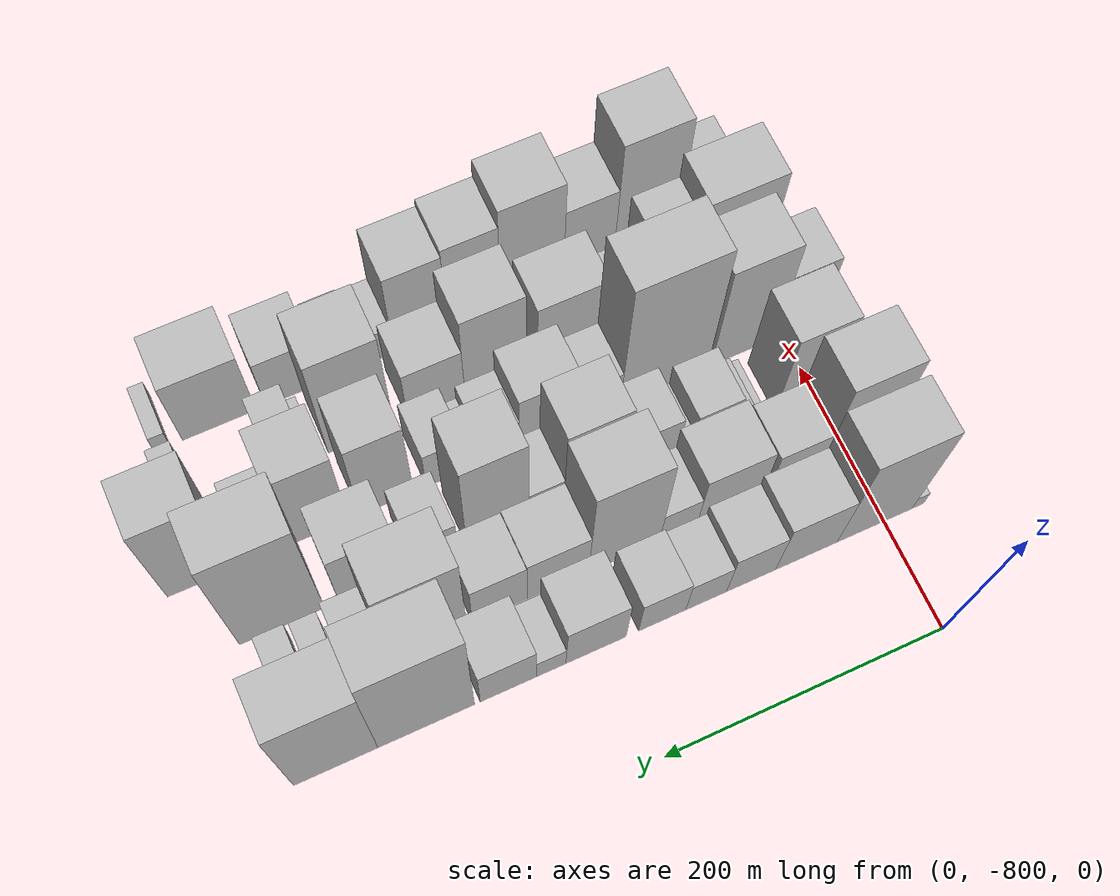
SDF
<sdf version="1.6">
 <world name="default">
  <model name="building_1">
   <static>1</static>
   <pose>100.0000 -825.5281 0 0.000000 0.000000 0.000000</pose>
   <link name="link">
    <pose>0 0 10.50 0 0 0</pose>
    <collision name="collision"><geometry><box><size>40.0000 8.9437 21.0000</size></box></geometry></collision>
    <visual name="visual">
     <cast_shadows>0</cast_shadows>
     <geometry><box><size>40.0000 8.9437 21.0000</size></box></geometry>
     <material>
      <script>
       <uri>model://HANNAS_wall/materials/scripts</uri>
       <uri>model://HANNAS_wall/materials/textures</uri>
       <name>vrc/HANNAS_wall</name>
      </script>
     </material>
    </visual>
   </link>
  </model>
  <model name="building_2">
   <static>1</static>
   <pose>100.0000 -792.9867 0 0.000000 0.000000 0.000000</pose>
   <link name="link">
    <pose>0 0 73.50 0 0 0</pose>
    <collision name="collision"><geometry><box><size>40.0000 56.1392 147.0000</size></box></geometry></collision>
    <visual name="visual">
     <cast_shadows>0</cast_shadows>
     <geometry><box><size>40.0000 56.1392 147.0000</size></box></geometry>
     <material>
      <script>
       <uri>model://HANNAS_wall/materials/scripts</uri>
       <uri>model://HANNAS_wall/materials/textures</uri>
       <name>vrc/HANNAS_wall</name>
      </script>
     </material>
    </visual>
   </link>
  </model>
  <model name="building_3">
   <static>1</static>
   <pose>100.0000 -742.1506 0 0.000000 0.000000 0.000000</pose>
   <link name="link">
    <pose>0 0 42.00 0 0 0</pose>
    <collision name="collision"><geometry><box><size>40.0000 45.5331 84.0000</size></box></geometry></collision>
    <visual name="visual">
     <cast_shadows>0</cast_shadows>
     <geometry><box><size>40.0000 45.5331 84.0000</size></box></geometry>
     <material>
      <script>
       <uri>model://HANNAS_wall/materials/scripts</uri>
       <uri>model://HANNAS_wall/materials/textures</uri>
       <name>vrc/HANNAS_wall</name>
      </script>
     </material>
    </visual>
   </link>
  </model>
  <model name="building_4">
   <static>1</static>
   <pose>100.0000 -701.3906 0 0.000000 0.000000 0.000000</pose>
   <link name="link">
    <pose>0 0 34.50 0 0 0</pose>
    <collision name="collision"><geometry><box><size>40.0000 35.9868 69.0000</size></box></geometry></collision>
    <visual name="visual">
     <cast_shadows>0</cast_shadows>
     <geometry><box><size>40.0000 35.9868 69.0000</size></box></geometry>
     <material>
      <script>
       <uri>model://HANNAS_wall/materials/scripts</uri>
       <uri>model://HANNAS_wall/materials/textures</uri>
       <name>vrc/HANNAS_wall</name>
      </script>
     </material>
    </visual>
   </link>
  </model>
  <model name="building_5">
   <static>1</static>
   <pose>100.0000 -668.6138 0 0.000000 0.000000 0.000000</pose>
   <link name="link">
    <pose>0 0 27.00 0 0 0</pose>
    <collision name="collision"><geometry><box><size>40.0000 29.5669 54.0000</size></box></geometry></collision>
    <visual name="visual">
     <cast_shadows>0</cast_shadows>
     <geometry><box><size>40.0000 29.5669 54.0000</size></box></geometry>
     <material>
      <script>
       <uri>model://HANNAS_wall/materials/scripts</uri>
       <uri>model://HANNAS_wall/materials/textures</uri>
       <name>vrc/HANNAS_wall</name>
      </script>
     </material>
    </visual>
   </link>
  </model>
  <model name="building_6">
   <static>1</static>
   <pose>100.0000 -636.8411 0 0.000000 0.000000 0.000000</pose>
   <link name="link">
    <pose>0 0 30.00 0 0 0</pose>
    <collision name="collision"><geometry><box><size>40.0000 33.9786 60.0000</size></box></geometry></collision>
    <visual name="visual">
     <cast_shadows>0</cast_shadows>
     <geometry><box><size>40.0000 33.9786 60.0000</size></box></geometry>
     <material>
      <script>
       <uri>model://HANNAS_wall/materials/scripts</uri>
       <uri>model://HANNAS_wall/materials/textures</uri>
       <name>vrc/HANNAS_wall</name>
      </script>
     </material>
    </visual>
   </link>
  </model>
  <model name="building_7">
   <static>1</static>
   <pose>100.0000 -589.4353 0 0.000000 0.000000 0.000000</pose>
   <link name="link">
    <pose>0 0 37.50 0 0 0</pose>
    <collision name="collision"><geometry><box><size>40.0000 42.8330 75.0000</size></box></geometry></collision>
    <visual name="visual">
     <cast_shadows>0</cast_shadows>
     <geometry><box><size>40.0000 42.8330 75.0000</size></box></geometry>
     <material>
      <script>
       <uri>model://HANNAS_wall/materials/scripts</uri>
       <uri>model://HANNAS_wall/materials/textures</uri>
       <name>vrc/HANNAS_wall</name>
      </script>
     </material>
    </visual>
   </link>
  </model>
  <model name="building_8">
   <static>1</static>
   <pose>100.0000 -557.5764 0 0.000000 0.000000 0.000000</pose>
   <link name="link">
    <pose>0 0 18.00 0 0 0</pose>
    <collision name="collision"><geometry><box><size>40.0000 20.8849 36.0000</size></box></geometry></collision>
    <visual name="visual">
     <cast_shadows>0</cast_shadows>
     <geometry><box><size>40.0000 20.8849 36.0000</size></box></geometry>
     <material>
      <script>
       <uri>model://HANNAS_wall/materials/scripts</uri>
       <uri>model://HANNAS_wall/materials/textures</uri>
       <name>vrc/HANNAS_wall</name>
      </script>
     </material>
    </visual>
   </link>
  </model>
  <model name="building_9">
   <static>1</static>
   <pose>100.0000 -527.5872 0 0.000000 0.000000 0.000000</pose>
   <link name="link">
    <pose>0 0 33.00 0 0 0</pose>
    <collision name="collision"><geometry><box><size>40.0000 39.0934 66.0000</size></box></geometry></collision>
    <visual name="visual">
     <cast_shadows>0</cast_shadows>
     <geometry><box><size>40.0000 39.0934 66.0000</size></box></geometry>
     <material>
      <script>
       <uri>model://HANNAS_wall/materials/scripts</uri>
       <uri>model://HANNAS_wall/materials/textures</uri>
       <name>vrc/HANNAS_wall</name>
      </script>
     </material>
    </visual>
   </link>
  </model>
  <model name="building_10">
   <static>1</static>
   <pose>100.0000 -470.7364 0 0.000000 0.000000 0.000000</pose>
   <link name="link">
    <pose>0 0 85.50 0 0 0</pose>
    <collision name="collision"><geometry><box><size>40.0000 66.6082 171.0000</size></box></geometry></collision>
    <visual name="visual">
     <cast_shadows>0</cast_shadows>
     <geometry><box><size>40.0000 66.6082 171.0000</size></box></geometry>
     <material>
      <script>
       <uri>model://HANNAS_wall/materials/scripts</uri>
       <uri>model://HANNAS_wall/materials/textures</uri>
       <name>vrc/HANNAS_wall</name>
      </script>
     </material>
    </visual>
   </link>
  </model>
  <model name="building_11">
   <static>1</static>
   <pose>100.0000 -408.8160 0 0.000000 0.000000 0.000000</pose>
   <link name="link">
    <pose>0 0 73.50 0 0 0</pose>
    <collision name="collision"><geometry><box><size>40.0000 57.2327 147.0000</size></box></geometry></collision>
    <visual name="visual">
     <cast_shadows>0</cast_shadows>
     <geometry><box><size>40.0000 57.2327 147.0000</size></box></geometry>
     <material>
      <script>
       <uri>model://HANNAS_wall/materials/scripts</uri>
       <uri>model://HANNAS_wall/materials/textures</uri>
       <name>vrc/HANNAS_wall</name>
      </script>
     </material>
    </visual>
   </link>
  </model>
  <model name="building_47">
   <static>1</static>
   <pose>149.0000 -801.1284 0 0.000000 0.000000 0.000000</pose>
   <link name="link">
    <pose>0 0 72.00 0 0 0</pose>
    <collision name="collision"><geometry><box><size>40.0000 49.7432 144.0000</size></box></geometry></collision>
    <visual name="visual">
     <cast_shadows>0</cast_shadows>
     <geometry><box><size>40.0000 49.7432 144.0000</size></box></geometry>
     <material>
      <script>
       <uri>model://HANNAS_wall/materials/scripts</uri>
       <uri>model://HANNAS_wall/materials/textures</uri>
       <name>vrc/HANNAS_wall</name>
      </script>
     </material>
    </visual>
   </link>
  </model>
  <model name="building_48">
   <static>1</static>
   <pose>149.0000 -757.5594 0 0.000000 0.000000 0.000000</pose>
   <link name="link">
    <pose>0 0 34.50 0 0 0</pose>
    <collision name="collision"><geometry><box><size>40.0000 37.3949 69.0000</size></box></geometry></collision>
    <visual name="visual">
     <cast_shadows>0</cast_shadows>
     <geometry><box><size>40.0000 37.3949 69.0000</size></box></geometry>
     <material>
      <script>
       <uri>model://HANNAS_wall/materials/scripts</uri>
       <uri>model://HANNAS_wall/materials/textures</uri>
       <name>vrc/HANNAS_wall</name>
      </script>
     </material>
    </visual>
   </link>
  </model>
  <model name="building_49">
   <static>1</static>
   <pose>149.0000 -710.0263 0 0.000000 0.000000 0.000000</pose>
   <link name="link">
    <pose>0 0 42.00 0 0 0</pose>
    <collision name="collision"><geometry><box><size>40.0000 47.6712 84.0000</size></box></geometry></collision>
    <visual name="visual">
     <cast_shadows>0</cast_shadows>
     <geometry><box><size>40.0000 47.6712 84.0000</size></box></geometry>
     <material>
      <script>
       <uri>model://HANNAS_wall/materials/scripts</uri>
       <uri>model://HANNAS_wall/materials/textures</uri>
       <name>vrc/HANNAS_wall</name>
      </script>
     </material>
    </visual>
   </link>
  </model>
  <model name="building_50">
   <static>1</static>
   <pose>149.0000 -672.4441 0 0.000000 0.000000 0.000000</pose>
   <link name="link">
    <pose>0 0 25.50 0 0 0</pose>
    <collision name="collision"><geometry><box><size>40.0000 27.4933 51.0000</size></box></geometry></collision>
    <visual name="visual">
     <cast_shadows>0</cast_shadows>
     <geometry><box><size>40.0000 27.4933 51.0000</size></box></geometry>
     <material>
      <script>
       <uri>model://HANNAS_wall/materials/scripts</uri>
       <uri>model://HANNAS_wall/materials/textures</uri>
       <name>vrc/HANNAS_wall</name>
      </script>
     </material>
    </visual>
   </link>
  </model>
  <model name="building_51">
   <static>1</static>
   <pose>149.0000 -632.8638 0 0.000000 0.000000 0.000000</pose>
   <link name="link">
    <pose>0 0 75.00 0 0 0</pose>
    <collision name="collision"><geometry><box><size>40.0000 51.6673 150.0000</size></box></geometry></collision>
    <visual name="visual">
     <cast_shadows>0</cast_shadows>
     <geometry><box><size>40.0000 51.6673 150.0000</size></box></geometry>
     <material>
      <script>
       <uri>model://HANNAS_wall/materials/scripts</uri>
       <uri>model://HANNAS_wall/materials/textures</uri>
       <name>vrc/HANNAS_wall</name>
      </script>
     </material>
    </visual>
   </link>
  </model>
  <model name="building_52">
   <static>1</static>
   <pose>149.0000 -584.9630 0 0.000000 0.000000 0.000000</pose>
   <link name="link">
    <pose>0 0 37.50 0 0 0</pose>
    <collision name="collision"><geometry><box><size>40.0000 44.1342 75.0000</size></box></geometry></collision>
    <visual name="visual">
     <cast_shadows>0</cast_shadows>
     <geometry><box><size>40.0000 44.1342 75.0000</size></box></geometry>
     <material>
      <script>
       <uri>model://HANNAS_wall/materials/scripts</uri>
       <uri>model://HANNAS_wall/materials/textures</uri>
       <name>vrc/HANNAS_wall</name>
      </script>
     </material>
    </visual>
   </link>
  </model>
  <model name="building_53">
   <static>1</static>
   <pose>149.0000 -543.5457 0 0.000000 0.000000 0.000000</pose>
   <link name="link">
    <pose>0 0 36.00 0 0 0</pose>
    <collision name="collision"><geometry><box><size>40.0000 38.7005 72.0000</size></box></geometry></collision>
    <visual name="visual">
     <cast_shadows>0</cast_shadows>
     <geometry><box><size>40.0000 38.7005 72.0000</size></box></geometry>
     <material>
      <script>
       <uri>model://HANNAS_wall/materials/scripts</uri>
       <uri>model://HANNAS_wall/materials/textures</uri>
       <name>vrc/HANNAS_wall</name>
      </script>
     </material>
    </visual>
   </link>
  </model>
  <model name="building_54">
   <static>1</static>
   <pose>149.0000 -492.4049 0 0.000000 0.000000 0.000000</pose>
   <link name="link">
    <pose>0 0 70.50 0 0 0</pose>
    <collision name="collision"><geometry><box><size>40.0000 55.5810 141.0000</size></box></geometry></collision>
    <visual name="visual">
     <cast_shadows>0</cast_shadows>
     <geometry><box><size>40.0000 55.5810 141.0000</size></box></geometry>
     <material>
      <script>
       <uri>model://HANNAS_wall/materials/scripts</uri>
       <uri>model://HANNAS_wall/materials/textures</uri>
       <name>vrc/HANNAS_wall</name>
      </script>
     </material>
    </visual>
   </link>
  </model>
  <model name="building_55">
   <static>1</static>
   <pose>149.0000 -451.6759 0 0.000000 0.000000 0.000000</pose>
   <link name="link">
    <pose>0 0 24.00 0 0 0</pose>
    <collision name="collision"><geometry><box><size>40.0000 25.8770 48.0000</size></box></geometry></collision>
    <visual name="visual">
     <cast_shadows>0</cast_shadows>
     <geometry><box><size>40.0000 25.8770 48.0000</size></box></geometry>
     <material>
      <script>
       <uri>model://HANNAS_wall/materials/scripts</uri>
       <uri>model://HANNAS_wall/materials/textures</uri>
       <name>vrc/HANNAS_wall</name>
      </script>
     </material>
    </visual>
   </link>
  </model>
  <model name="building_56">
   <static>1</static>
   <pose>149.0000 -425.4327 0 0.000000 0.000000 0.000000</pose>
   <link name="link">
    <pose>0 0 16.50 0 0 0</pose>
    <collision name="collision"><geometry><box><size>40.0000 18.6094 33.0000</size></box></geometry></collision>
    <visual name="visual">
     <cast_shadows>0</cast_shadows>
     <geometry><box><size>40.0000 18.6094 33.0000</size></box></geometry>
     <material>
      <script>
       <uri>model://HANNAS_wall/materials/scripts</uri>
       <uri>model://HANNAS_wall/materials/textures</uri>
       <name>vrc/HANNAS_wall</name>
      </script>
     </material>
    </visual>
   </link>
  </model>
  <model name="building_57">
   <static>1</static>
   <pose>149.0000 -402.5604 0 0.000000 0.000000 0.000000</pose>
   <link name="link">
    <pose>0 0 18.00 0 0 0</pose>
    <collision name="collision"><geometry><box><size>40.0000 21.1352 36.0000</size></box></geometry></collision>
    <visual name="visual">
     <cast_shadows>0</cast_shadows>
     <geometry><box><size>40.0000 21.1352 36.0000</size></box></geometry>
     <material>
      <script>
       <uri>model://HANNAS_wall/materials/scripts</uri>
       <uri>model://HANNAS_wall/materials/textures</uri>
       <name>vrc/HANNAS_wall</name>
      </script>
     </material>
    </visual>
   </link>
  </model>
  <model name="building_96">
   <static>1</static>
   <pose>198.0000 -824.0716 0 0.000000 0.000000 0.000000</pose>
   <link name="link">
    <pose>0 0 13.50 0 0 0</pose>
    <collision name="collision"><geometry><box><size>40.0000 11.8567 27.0000</size></box></geometry></collision>
    <visual name="visual">
     <cast_shadows>0</cast_shadows>
     <geometry><box><size>40.0000 11.8567 27.0000</size></box></geometry>
     <material>
      <script>
       <uri>model://HANNAS_wall/materials/scripts</uri>
       <uri>model://HANNAS_wall/materials/textures</uri>
       <name>vrc/HANNAS_wall</name>
      </script>
     </material>
    </visual>
   </link>
  </model>
  <model name="building_97">
   <static>1</static>
   <pose>198.0000 -791.1762 0 0.000000 0.000000 0.000000</pose>
   <link name="link">
    <pose>0 0 60.00 0 0 0</pose>
    <collision name="collision"><geometry><box><size>40.0000 43.9342 120.0000</size></box></geometry></collision>
    <visual name="visual">
     <cast_shadows>0</cast_shadows>
     <geometry><box><size>40.0000 43.9342 120.0000</size></box></geometry>
     <material>
      <script>
       <uri>model://HANNAS_wall/materials/scripts</uri>
       <uri>model://HANNAS_wall/materials/textures</uri>
       <name>vrc/HANNAS_wall</name>
      </script>
     </material>
    </visual>
   </link>
  </model>
  <model name="building_98">
   <static>1</static>
   <pose>198.0000 -755.4946 0 0.000000 0.000000 0.000000</pose>
   <link name="link">
    <pose>0 0 9.00 0 0 0</pose>
    <collision name="collision"><geometry><box><size>40.0000 7.4290 18.0000</size></box></geometry></collision>
    <visual name="visual">
     <cast_shadows>0</cast_shadows>
     <geometry><box><size>40.0000 7.4290 18.0000</size></box></geometry>
     <material>
      <script>
       <uri>model://HANNAS_wall/materials/scripts</uri>
       <uri>model://HANNAS_wall/materials/textures</uri>
       <name>vrc/HANNAS_wall</name>
      </script>
     </material>
    </visual>
   </link>
  </model>
  <model name="building_99">
   <static>1</static>
   <pose>198.0000 -745.9419 0 0.000000 0.000000 0.000000</pose>
   <link name="link">
    <pose>0 0 13.50 0 0 0</pose>
    <collision name="collision"><geometry><box><size>40.0000 11.6764 27.0000</size></box></geometry></collision>
    <visual name="visual">
     <cast_shadows>0</cast_shadows>
     <geometry><box><size>40.0000 11.6764 27.0000</size></box></geometry>
     <material>
      <script>
       <uri>model://HANNAS_wall/materials/scripts</uri>
       <uri>model://HANNAS_wall/materials/textures</uri>
       <name>vrc/HANNAS_wall</name>
      </script>
     </material>
    </visual>
   </link>
  </model>
  <model name="building_100">
   <static>1</static>
   <pose>198.0000 -723.5810 0 0.000000 0.000000 0.000000</pose>
   <link name="link">
    <pose>0 0 28.50 0 0 0</pose>
    <collision name="collision"><geometry><box><size>40.0000 33.0454 57.0000</size></box></geometry></collision>
    <visual name="visual">
     <cast_shadows>0</cast_shadows>
     <geometry><box><size>40.0000 33.0454 57.0000</size></box></geometry>
     <material>
      <script>
       <uri>model://HANNAS_wall/materials/scripts</uri>
       <uri>model://HANNAS_wall/materials/textures</uri>
       <name>vrc/HANNAS_wall</name>
      </script>
     </material>
    </visual>
   </link>
  </model>
  <model name="building_101">
   <static>1</static>
   <pose>198.0000 -701.5438 0 0.000000 0.000000 0.000000</pose>
   <link name="link">
    <pose>0 0 13.50 0 0 0</pose>
    <collision name="collision"><geometry><box><size>40.0000 11.0291 27.0000</size></box></geometry></collision>
    <visual name="visual">
     <cast_shadows>0</cast_shadows>
     <geometry><box><size>40.0000 11.0291 27.0000</size></box></geometry>
     <material>
      <script>
       <uri>model://HANNAS_wall/materials/scripts</uri>
       <uri>model://HANNAS_wall/materials/textures</uri>
       <name>vrc/HANNAS_wall</name>
      </script>
     </material>
    </visual>
   </link>
  </model>
  <model name="building_102">
   <static>1</static>
   <pose>198.0000 -676.7778 0 0.000000 0.000000 0.000000</pose>
   <link name="link">
    <pose>0 0 33.00 0 0 0</pose>
    <collision name="collision"><geometry><box><size>40.0000 38.5028 66.0000</size></box></geometry></collision>
    <visual name="visual">
     <cast_shadows>0</cast_shadows>
     <geometry><box><size>40.0000 38.5028 66.0000</size></box></geometry>
     <material>
      <script>
       <uri>model://HANNAS_wall/materials/scripts</uri>
       <uri>model://HANNAS_wall/materials/textures</uri>
       <name>vrc/HANNAS_wall</name>
      </script>
     </material>
    </visual>
   </link>
  </model>
  <model name="building_103">
   <static>1</static>
   <pose>198.0000 -634.9142 0 0.000000 0.000000 0.000000</pose>
   <link name="link">
    <pose>0 0 63.00 0 0 0</pose>
    <collision name="collision"><geometry><box><size>40.0000 45.2245 126.0000</size></box></geometry></collision>
    <visual name="visual">
     <cast_shadows>0</cast_shadows>
     <geometry><box><size>40.0000 45.2245 126.0000</size></box></geometry>
     <material>
      <script>
       <uri>model://HANNAS_wall/materials/scripts</uri>
       <uri>model://HANNAS_wall/materials/textures</uri>
       <name>vrc/HANNAS_wall</name>
      </script>
     </material>
    </visual>
   </link>
  </model>
  <model name="building_104">
   <static>1</static>
   <pose>198.0000 -599.4129 0 0.000000 0.000000 0.000000</pose>
   <link name="link">
    <pose>0 0 24.00 0 0 0</pose>
    <collision name="collision"><geometry><box><size>40.0000 25.7780 48.0000</size></box></geometry></collision>
    <visual name="visual">
     <cast_shadows>0</cast_shadows>
     <geometry><box><size>40.0000 25.7780 48.0000</size></box></geometry>
     <material>
      <script>
       <uri>model://HANNAS_wall/materials/scripts</uri>
       <uri>model://HANNAS_wall/materials/textures</uri>
       <name>vrc/HANNAS_wall</name>
      </script>
     </material>
    </visual>
   </link>
  </model>
  <model name="building_105">
   <static>1</static>
   <pose>198.0000 -564.0211 0 0.000000 0.000000 0.000000</pose>
   <link name="link">
    <pose>0 0 72.00 0 0 0</pose>
    <collision name="collision"><geometry><box><size>40.0000 45.0058 144.0000</size></box></geometry></collision>
    <visual name="visual">
     <cast_shadows>0</cast_shadows>
     <geometry><box><size>40.0000 45.0058 144.0000</size></box></geometry>
     <material>
      <script>
       <uri>model://HANNAS_wall/materials/scripts</uri>
       <uri>model://HANNAS_wall/materials/textures</uri>
       <name>vrc/HANNAS_wall</name>
      </script>
     </material>
    </visual>
   </link>
  </model>
  <model name="building_106">
   <static>1</static>
   <pose>198.0000 -519.6504 0 0.000000 0.000000 0.000000</pose>
   <link name="link">
    <pose>0 0 27.00 0 0 0</pose>
    <collision name="collision"><geometry><box><size>40.0000 31.7355 54.0000</size></box></geometry></collision>
    <visual name="visual">
     <cast_shadows>0</cast_shadows>
     <geometry><box><size>40.0000 31.7355 54.0000</size></box></geometry>
     <material>
      <script>
       <uri>model://HANNAS_wall/materials/scripts</uri>
       <uri>model://HANNAS_wall/materials/textures</uri>
       <name>vrc/HANNAS_wall</name>
      </script>
     </material>
    </visual>
   </link>
  </model>
  <model name="building_107">
   <static>1</static>
   <pose>198.0000 -473.3103 0 0.000000 0.000000 0.000000</pose>
   <link name="link">
    <pose>0 0 43.50 0 0 0</pose>
    <collision name="collision"><geometry><box><size>40.0000 44.9447 87.0000</size></box></geometry></collision>
    <visual name="visual">
     <cast_shadows>0</cast_shadows>
     <geometry><box><size>40.0000 44.9447 87.0000</size></box></geometry>
     <material>
      <script>
       <uri>model://HANNAS_wall/materials/scripts</uri>
       <uri>model://HANNAS_wall/materials/textures</uri>
       <name>vrc/HANNAS_wall</name>
      </script>
     </material>
    </visual>
   </link>
  </model>
  <model name="building_108">
   <static>1</static>
   <pose>198.0000 -411.2551 0 0.000000 0.000000 0.000000</pose>
   <link name="link">
    <pose>0 0 84.00 0 0 0</pose>
    <collision name="collision"><geometry><box><size>40.0000 59.1658 168.0000</size></box></geometry></collision>
    <visual name="visual">
     <cast_shadows>0</cast_shadows>
     <geometry><box><size>40.0000 59.1658 168.0000</size></box></geometry>
     <material>
      <script>
       <uri>model://HANNAS_wall/materials/scripts</uri>
       <uri>model://HANNAS_wall/materials/textures</uri>
       <name>vrc/HANNAS_wall</name>
      </script>
     </material>
    </visual>
   </link>
  </model>
  <model name="building_144">
   <static>1</static>
   <pose>247.0000 -812.1263 0 0.000000 0.000000 0.000000</pose>
   <link name="link">
    <pose>0 0 48.00 0 0 0</pose>
    <collision name="collision"><geometry><box><size>40.0000 35.7474 96.0000</size></box></geometry></collision>
    <visual name="visual">
     <cast_shadows>0</cast_shadows>
     <geometry><box><size>40.0000 35.7474 96.0000</size></box></geometry>
     <material>
      <script>
       <uri>model://HANNAS_wall/materials/scripts</uri>
       <uri>model://HANNAS_wall/materials/textures</uri>
       <name>vrc/HANNAS_wall</name>
      </script>
     </material>
    </visual>
   </link>
  </model>
  <model name="building_145">
   <static>1</static>
   <pose>247.0000 -769.9397 0 0.000000 0.000000 0.000000</pose>
   <link name="link">
    <pose>0 0 72.00 0 0 0</pose>
    <collision name="collision"><geometry><box><size>40.0000 48.6259 144.0000</size></box></geometry></collision>
    <visual name="visual">
     <cast_shadows>0</cast_shadows>
     <geometry><box><size>40.0000 48.6259 144.0000</size></box></geometry>
     <material>
      <script>
       <uri>model://HANNAS_wall/materials/scripts</uri>
       <uri>model://HANNAS_wall/materials/textures</uri>
       <name>vrc/HANNAS_wall</name>
      </script>
     </material>
    </visual>
   </link>
  </model>
  <model name="building_146">
   <static>1</static>
   <pose>247.0000 -709.6107 0 0.000000 0.000000 0.000000</pose>
   <link name="link">
    <pose>0 0 90.00 0 0 0</pose>
    <collision name="collision"><geometry><box><size>40.0000 66.0320 180.0000</size></box></geometry></collision>
    <visual name="visual">
     <cast_shadows>0</cast_shadows>
     <geometry><box><size>40.0000 66.0320 180.0000</size></box></geometry>
     <material>
      <script>
       <uri>model://HANNAS_wall/materials/scripts</uri>
       <uri>model://HANNAS_wall/materials/textures</uri>
       <name>vrc/HANNAS_wall</name>
      </script>
     </material>
    </visual>
   </link>
  </model>
  <model name="building_147">
   <static>1</static>
   <pose>247.0000 -661.4830 0 0.000000 0.000000 0.000000</pose>
   <link name="link">
    <pose>0 0 27.00 0 0 0</pose>
    <collision name="collision"><geometry><box><size>40.0000 30.2236 54.0000</size></box></geometry></collision>
    <visual name="visual">
     <cast_shadows>0</cast_shadows>
     <geometry><box><size>40.0000 30.2236 54.0000</size></box></geometry>
     <material>
      <script>
       <uri>model://HANNAS_wall/materials/scripts</uri>
       <uri>model://HANNAS_wall/materials/textures</uri>
       <name>vrc/HANNAS_wall</name>
      </script>
     </material>
    </visual>
   </link>
  </model>
  <model name="building_148">
   <static>1</static>
   <pose>247.0000 -624.0657 0 0.000000 0.000000 0.000000</pose>
   <link name="link">
    <pose>0 0 40.50 0 0 0</pose>
    <collision name="collision"><geometry><box><size>40.0000 44.6110 81.0000</size></box></geometry></collision>
    <visual name="visual">
     <cast_shadows>0</cast_shadows>
     <geometry><box><size>40.0000 44.6110 81.0000</size></box></geometry>
     <material>
      <script>
       <uri>model://HANNAS_wall/materials/scripts</uri>
       <uri>model://HANNAS_wall/materials/textures</uri>
       <name>vrc/HANNAS_wall</name>
      </script>
     </material>
    </visual>
   </link>
  </model>
  <model name="building_149">
   <static>1</static>
   <pose>247.0000 -587.6158 0 0.000000 0.000000 0.000000</pose>
   <link name="link">
    <pose>0 0 24.00 0 0 0</pose>
    <collision name="collision"><geometry><box><size>40.0000 28.2888 48.0000</size></box></geometry></collision>
    <visual name="visual">
     <cast_shadows>0</cast_shadows>
     <geometry><box><size>40.0000 28.2888 48.0000</size></box></geometry>
     <material>
      <script>
       <uri>model://HANNAS_wall/materials/scripts</uri>
       <uri>model://HANNAS_wall/materials/textures</uri>
       <name>vrc/HANNAS_wall</name>
      </script>
     </material>
    </visual>
   </link>
  </model>
  <model name="building_150">
   <static>1</static>
   <pose>247.0000 -568.0713 0 0.000000 0.000000 0.000000</pose>
   <link name="link">
    <pose>0 0 13.50 0 0 0</pose>
    <collision name="collision"><geometry><box><size>40.0000 10.8002 27.0000</size></box></geometry></collision>
    <visual name="visual">
     <cast_shadows>0</cast_shadows>
     <geometry><box><size>40.0000 10.8002 27.0000</size></box></geometry>
     <material>
      <script>
       <uri>model://HANNAS_wall/materials/scripts</uri>
       <uri>model://HANNAS_wall/materials/textures</uri>
       <name>vrc/HANNAS_wall</name>
      </script>
     </material>
    </visual>
   </link>
  </model>
  <model name="building_151">
   <static>1</static>
   <pose>247.0000 -548.1284 0 0.000000 0.000000 0.000000</pose>
   <link name="link">
    <pose>0 0 28.50 0 0 0</pose>
    <collision name="collision"><geometry><box><size>40.0000 29.0857 57.0000</size></box></geometry></collision>
    <visual name="visual">
     <cast_shadows>0</cast_shadows>
     <geometry><box><size>40.0000 29.0857 57.0000</size></box></geometry>
     <material>
      <script>
       <uri>model://HANNAS_wall/materials/scripts</uri>
       <uri>model://HANNAS_wall/materials/textures</uri>
       <name>vrc/HANNAS_wall</name>
      </script>
     </material>
    </visual>
   </link>
  </model>
  <model name="building_152">
   <static>1</static>
   <pose>247.0000 -505.2057 0 0.000000 0.000000 0.000000</pose>
   <link name="link">
    <pose>0 0 60.00 0 0 0</pose>
    <collision name="collision"><geometry><box><size>40.0000 38.7596 120.0000</size></box></geometry></collision>
    <visual name="visual">
     <cast_shadows>0</cast_shadows>
     <geometry><box><size>40.0000 38.7596 120.0000</size></box></geometry>
     <material>
      <script>
       <uri>model://HANNAS_wall/materials/scripts</uri>
       <uri>model://HANNAS_wall/materials/textures</uri>
       <name>vrc/HANNAS_wall</name>
      </script>
     </material>
    </visual>
   </link>
  </model>
  <model name="building_153">
   <static>1</static>
   <pose>247.0000 -456.5886 0 0.000000 0.000000 0.000000</pose>
   <link name="link">
    <pose>0 0 60.00 0 0 0</pose>
    <collision name="collision"><geometry><box><size>40.0000 42.4746 120.0000</size></box></geometry></collision>
    <visual name="visual">
     <cast_shadows>0</cast_shadows>
     <geometry><box><size>40.0000 42.4746 120.0000</size></box></geometry>
     <material>
      <script>
       <uri>model://HANNAS_wall/materials/scripts</uri>
       <uri>model://HANNAS_wall/materials/textures</uri>
       <name>vrc/HANNAS_wall</name>
      </script>
     </material>
    </visual>
   </link>
  </model>
  <model name="building_154">
   <static>1</static>
   <pose>247.0000 -421.2764 0 0.000000 0.000000 0.000000</pose>
   <link name="link">
    <pose>0 0 27.00 0 0 0</pose>
    <collision name="collision"><geometry><box><size>40.0000 28.1497 54.0000</size></box></geometry></collision>
    <visual name="visual">
     <cast_shadows>0</cast_shadows>
     <geometry><box><size>40.0000 28.1497 54.0000</size></box></geometry>
     <material>
      <script>
       <uri>model://HANNAS_wall/materials/scripts</uri>
       <uri>model://HANNAS_wall/materials/textures</uri>
       <name>vrc/HANNAS_wall</name>
      </script>
     </material>
    </visual>
   </link>
  </model>
  <model name="building_155">
   <static>1</static>
   <pose>247.0000 -401.9743 0 0.000000 0.000000 0.000000</pose>
   <link name="link">
    <pose>0 0 12.00 0 0 0</pose>
    <collision name="collision"><geometry><box><size>40.0000 10.4545 24.0000</size></box></geometry></collision>
    <visual name="visual">
     <cast_shadows>0</cast_shadows>
     <geometry><box><size>40.0000 10.4545 24.0000</size></box></geometry>
     <material>
      <script>
       <uri>model://HANNAS_wall/materials/scripts</uri>
       <uri>model://HANNAS_wall/materials/textures</uri>
       <name>vrc/HANNAS_wall</name>
      </script>
     </material>
    </visual>
   </link>
  </model>
  <model name="building_156">
   <static>1</static>
   <pose>247.0000 -373.4769 0 0.000000 0.000000 0.000000</pose>
   <link name="link">
    <pose>0 0 64.50 0 0 0</pose>
    <collision name="collision"><geometry><box><size>40.0000 46.5403 129.0000</size></box></geometry></collision>
    <visual name="visual">
     <cast_shadows>0</cast_shadows>
     <geometry><box><size>40.0000 46.5403 129.0000</size></box></geometry>
     <material>
      <script>
       <uri>model://HANNAS_wall/materials/scripts</uri>
       <uri>model://HANNAS_wall/materials/textures</uri>
       <name>vrc/HANNAS_wall</name>
      </script>
     </material>
    </visual>
   </link>
  </model>
  <model name="building_196">
   <static>1</static>
   <pose>296.0000 -820.2100 0 0.000000 0.000000 0.000000</pose>
   <link name="link">
    <pose>0 0 19.50 0 0 0</pose>
    <collision name="collision"><geometry><box><size>40.0000 19.5800 39.0000</size></box></geometry></collision>
    <visual name="visual">
     <cast_shadows>0</cast_shadows>
     <geometry><box><size>40.0000 19.5800 39.0000</size></box></geometry>
     <material>
      <script>
       <uri>model://HANNAS_wall/materials/scripts</uri>
       <uri>model://HANNAS_wall/materials/textures</uri>
       <name>vrc/HANNAS_wall</name>
      </script>
     </material>
    </visual>
   </link>
  </model>
  <model name="building_197">
   <static>1</static>
   <pose>296.0000 -782.8086 0 0.000000 0.000000 0.000000</pose>
   <link name="link">
    <pose>0 0 70.50 0 0 0</pose>
    <collision name="collision"><geometry><box><size>40.0000 55.2229 141.0000</size></box></geometry></collision>
    <visual name="visual">
     <cast_shadows>0</cast_shadows>
     <geometry><box><size>40.0000 55.2229 141.0000</size></box></geometry>
     <material>
      <script>
       <uri>model://HANNAS_wall/materials/scripts</uri>
       <uri>model://HANNAS_wall/materials/textures</uri>
       <name>vrc/HANNAS_wall</name>
      </script>
     </material>
    </visual>
   </link>
  </model>
  <model name="building_198">
   <static>1</static>
   <pose>296.0000 -738.0283 0 0.000000 0.000000 0.000000</pose>
   <link name="link">
    <pose>0 0 55.50 0 0 0</pose>
    <collision name="collision"><geometry><box><size>40.0000 34.3377 111.0000</size></box></geometry></collision>
    <visual name="visual">
     <cast_shadows>0</cast_shadows>
     <geometry><box><size>40.0000 34.3377 111.0000</size></box></geometry>
     <material>
      <script>
       <uri>model://HANNAS_wall/materials/scripts</uri>
       <uri>model://HANNAS_wall/materials/textures</uri>
       <name>vrc/HANNAS_wall</name>
      </script>
     </material>
    </visual>
   </link>
  </model>
  <model name="building_199">
   <static>1</static>
   <pose>296.0000 -708.4974 0 0.000000 0.000000 0.000000</pose>
   <link name="link">
    <pose>0 0 24.00 0 0 0</pose>
    <collision name="collision"><geometry><box><size>40.0000 24.7241 48.0000</size></box></geometry></collision>
    <visual name="visual">
     <cast_shadows>0</cast_shadows>
     <geometry><box><size>40.0000 24.7241 48.0000</size></box></geometry>
     <material>
      <script>
       <uri>model://HANNAS_wall/materials/scripts</uri>
       <uri>model://HANNAS_wall/materials/textures</uri>
       <name>vrc/HANNAS_wall</name>
      </script>
     </material>
    </visual>
   </link>
  </model>
  <model name="building_200">
   <static>1</static>
   <pose>296.0000 -663.1108 0 0.000000 0.000000 0.000000</pose>
   <link name="link">
    <pose>0 0 45.00 0 0 0</pose>
    <collision name="collision"><geometry><box><size>40.0000 52.0492 90.0000</size></box></geometry></collision>
    <visual name="visual">
     <cast_shadows>0</cast_shadows>
     <geometry><box><size>40.0000 52.0492 90.0000</size></box></geometry>
     <material>
      <script>
       <uri>model://HANNAS_wall/materials/scripts</uri>
       <uri>model://HANNAS_wall/materials/textures</uri>
       <name>vrc/HANNAS_wall</name>
      </script>
     </material>
    </visual>
   </link>
  </model>
  <model name="building_201">
   <static>1</static>
   <pose>296.0000 -606.1296 0 0.000000 0.000000 0.000000</pose>
   <link name="link">
    <pose>0 0 60.00 0 0 0</pose>
    <collision name="collision"><geometry><box><size>40.0000 45.9132 120.0000</size></box></geometry></collision>
    <visual name="visual">
     <cast_shadows>0</cast_shadows>
     <geometry><box><size>40.0000 45.9132 120.0000</size></box></geometry>
     <material>
      <script>
       <uri>model://HANNAS_wall/materials/scripts</uri>
       <uri>model://HANNAS_wall/materials/textures</uri>
       <name>vrc/HANNAS_wall</name>
      </script>
     </material>
    </visual>
   </link>
  </model>
  <model name="building_202">
   <static>1</static>
   <pose>296.0000 -562.1209 0 0.000000 0.000000 0.000000</pose>
   <link name="link">
    <pose>0 0 37.50 0 0 0</pose>
    <collision name="collision"><geometry><box><size>40.0000 42.1042 75.0000</size></box></geometry></collision>
    <visual name="visual">
     <cast_shadows>0</cast_shadows>
     <geometry><box><size>40.0000 42.1042 75.0000</size></box></geometry>
     <material>
      <script>
       <uri>model://HANNAS_wall/materials/scripts</uri>
       <uri>model://HANNAS_wall/materials/textures</uri>
       <name>vrc/HANNAS_wall</name>
      </script>
     </material>
    </visual>
   </link>
  </model>
  <model name="building_203">
   <static>1</static>
   <pose>296.0000 -507.0511 0 0.000000 0.000000 0.000000</pose>
   <link name="link">
    <pose>0 0 73.50 0 0 0</pose>
    <collision name="collision"><geometry><box><size>40.0000 48.0354 147.0000</size></box></geometry></collision>
    <visual name="visual">
     <cast_shadows>0</cast_shadows>
     <geometry><box><size>40.0000 48.0354 147.0000</size></box></geometry>
     <material>
      <script>
       <uri>model://HANNAS_wall/materials/scripts</uri>
       <uri>model://HANNAS_wall/materials/textures</uri>
       <name>vrc/HANNAS_wall</name>
      </script>
     </material>
    </visual>
   </link>
  </model>
  <model name="building_204">
   <static>1</static>
   <pose>296.0000 -473.4166 0 0.000000 0.000000 0.000000</pose>
   <link name="link">
    <pose>0 0 9.00 0 0 0</pose>
    <collision name="collision"><geometry><box><size>40.0000 7.2337 18.0000</size></box></geometry></collision>
    <visual name="visual">
     <cast_shadows>0</cast_shadows>
     <geometry><box><size>40.0000 7.2337 18.0000</size></box></geometry>
     <material>
      <script>
       <uri>model://HANNAS_wall/materials/scripts</uri>
       <uri>model://HANNAS_wall/materials/textures</uri>
       <name>vrc/HANNAS_wall</name>
      </script>
     </material>
    </visual>
   </link>
  </model>
  <model name="building_205">
   <static>1</static>
   <pose>296.0000 -456.9291 0 0.000000 0.000000 0.000000</pose>
   <link name="link">
    <pose>0 0 24.00 0 0 0</pose>
    <collision name="collision"><geometry><box><size>40.0000 25.7413 48.0000</size></box></geometry></collision>
    <visual name="visual">
     <cast_shadows>0</cast_shadows>
     <geometry><box><size>40.0000 25.7413 48.0000</size></box></geometry>
     <material>
      <script>
       <uri>model://HANNAS_wall/materials/scripts</uri>
       <uri>model://HANNAS_wall/materials/textures</uri>
       <name>vrc/HANNAS_wall</name>
      </script>
     </material>
    </visual>
   </link>
  </model>
  <model name="building_206">
   <static>1</static>
   <pose>296.0000 -381.1365 0 0.000000 0.000000 0.000000</pose>
   <link name="link">
    <pose>0 0 15.00 0 0 0</pose>
    <collision name="collision"><geometry><box><size>40.0000 17.2813 30.0000</size></box></geometry></collision>
    <visual name="visual">
     <cast_shadows>0</cast_shadows>
     <geometry><box><size>40.0000 17.2813 30.0000</size></box></geometry>
     <material>
      <script>
       <uri>model://HANNAS_wall/materials/scripts</uri>
       <uri>model://HANNAS_wall/materials/textures</uri>
       <name>vrc/HANNAS_wall</name>
      </script>
     </material>
    </visual>
   </link>
  </model>
  <model name="building_240">
   <static>1</static>
   <pose>345.0000 -816.0049 0 0.000000 0.000000 0.000000</pose>
   <link name="link">
    <pose>0 0 10.50 0 0 0</pose>
    <collision name="collision"><geometry><box><size>40.0000 9.9902 21.0000</size></box></geometry></collision>
    <visual name="visual">
     <cast_shadows>0</cast_shadows>
     <geometry><box><size>40.0000 9.9902 21.0000</size></box></geometry>
     <material>
      <script>
       <uri>model://HANNAS_wall/materials/scripts</uri>
       <uri>model://HANNAS_wall/materials/textures</uri>
       <name>vrc/HANNAS_wall</name>
      </script>
     </material>
    </visual>
   </link>
  </model>
  <model name="building_241">
   <static>1</static>
   <pose>345.0000 -787.2398 0 0.000000 0.000000 0.000000</pose>
   <link name="link">
    <pose>0 0 37.50 0 0 0</pose>
    <collision name="collision"><geometry><box><size>40.0000 41.5399 75.0000</size></box></geometry></collision>
    <visual name="visual">
     <cast_shadows>0</cast_shadows>
     <geometry><box><size>40.0000 41.5399 75.0000</size></box></geometry>
     <material>
      <script>
       <uri>model://HANNAS_wall/materials/scripts</uri>
       <uri>model://HANNAS_wall/materials/textures</uri>
       <name>vrc/HANNAS_wall</name>
      </script>
     </material>
    </visual>
   </link>
  </model>
  <model name="building_242">
   <static>1</static>
   <pose>345.0000 -741.9914 0 0.000000 0.000000 0.000000</pose>
   <link name="link">
    <pose>0 0 81.00 0 0 0</pose>
    <collision name="collision"><geometry><box><size>40.0000 48.9569 162.0000</size></box></geometry></collision>
    <visual name="visual">
     <cast_shadows>0</cast_shadows>
     <geometry><box><size>40.0000 48.9569 162.0000</size></box></geometry>
     <material>
      <script>
       <uri>model://HANNAS_wall/materials/scripts</uri>
       <uri>model://HANNAS_wall/materials/textures</uri>
       <name>vrc/HANNAS_wall</name>
      </script>
     </material>
    </visual>
   </link>
  </model>
  <model name="building_243">
   <static>1</static>
   <pose>345.0000 -698.3353 0 0.000000 0.000000 0.000000</pose>
   <link name="link">
    <pose>0 0 52.50 0 0 0</pose>
    <collision name="collision"><geometry><box><size>40.0000 38.3554 105.0000</size></box></geometry></collision>
    <visual name="visual">
     <cast_shadows>0</cast_shadows>
     <geometry><box><size>40.0000 38.3554 105.0000</size></box></geometry>
     <material>
      <script>
       <uri>model://HANNAS_wall/materials/scripts</uri>
       <uri>model://HANNAS_wall/materials/textures</uri>
       <name>vrc/HANNAS_wall</name>
      </script>
     </material>
    </visual>
   </link>
  </model>
  <model name="building_244">
   <static>1</static>
   <pose>345.0000 -655.3644 0 0.000000 0.000000 0.000000</pose>
   <link name="link">
    <pose>0 0 72.00 0 0 0</pose>
    <collision name="collision"><geometry><box><size>40.0000 47.5863 144.0000</size></box></geometry></collision>
    <visual name="visual">
     <cast_shadows>0</cast_shadows>
     <geometry><box><size>40.0000 47.5863 144.0000</size></box></geometry>
     <material>
      <script>
       <uri>model://HANNAS_wall/materials/scripts</uri>
       <uri>model://HANNAS_wall/materials/textures</uri>
       <name>vrc/HANNAS_wall</name>
      </script>
     </material>
    </visual>
   </link>
  </model>
  <model name="building_245">
   <static>1</static>
   <pose>345.0000 -611.7153 0 0.000000 0.000000 0.000000</pose>
   <link name="link">
    <pose>0 0 61.50 0 0 0</pose>
    <collision name="collision"><geometry><box><size>40.0000 39.7119 123.0000</size></box></geometry></collision>
    <visual name="visual">
     <cast_shadows>0</cast_shadows>
     <geometry><box><size>40.0000 39.7119 123.0000</size></box></geometry>
     <material>
      <script>
       <uri>model://HANNAS_wall/materials/scripts</uri>
       <uri>model://HANNAS_wall/materials/textures</uri>
       <name>vrc/HANNAS_wall</name>
      </script>
     </material>
    </visual>
   </link>
  </model>
  <model name="building_246">
   <static>1</static>
   <pose>345.0000 -571.6766 0 0.000000 0.000000 0.000000</pose>
   <link name="link">
    <pose>0 0 57.00 0 0 0</pose>
    <collision name="collision"><geometry><box><size>40.0000 40.3655 114.0000</size></box></geometry></collision>
    <visual name="visual">
     <cast_shadows>0</cast_shadows>
     <geometry><box><size>40.0000 40.3655 114.0000</size></box></geometry>
     <material>
      <script>
       <uri>model://HANNAS_wall/materials/scripts</uri>
       <uri>model://HANNAS_wall/materials/textures</uri>
       <name>vrc/HANNAS_wall</name>
      </script>
     </material>
    </visual>
   </link>
  </model>
  <model name="building_247">
   <static>1</static>
   <pose>345.0000 -539.8760 0 0.000000 0.000000 0.000000</pose>
   <link name="link">
    <pose>0 0 21.00 0 0 0</pose>
    <collision name="collision"><geometry><box><size>40.0000 23.2356 42.0000</size></box></geometry></collision>
    <visual name="visual">
     <cast_shadows>0</cast_shadows>
     <geometry><box><size>40.0000 23.2356 42.0000</size></box></geometry>
     <material>
      <script>
       <uri>model://HANNAS_wall/materials/scripts</uri>
       <uri>model://HANNAS_wall/materials/textures</uri>
       <name>vrc/HANNAS_wall</name>
      </script>
     </material>
    </visual>
   </link>
  </model>
  <model name="building_248">
   <static>1</static>
   <pose>345.0000 -515.2051 0 0.000000 0.000000 0.000000</pose>
   <link name="link">
    <pose>0 0 22.50 0 0 0</pose>
    <collision name="collision"><geometry><box><size>40.0000 26.1063 45.0000</size></box></geometry></collision>
    <visual name="visual">
     <cast_shadows>0</cast_shadows>
     <geometry><box><size>40.0000 26.1063 45.0000</size></box></geometry>
     <material>
      <script>
       <uri>model://HANNAS_wall/materials/scripts</uri>
       <uri>model://HANNAS_wall/materials/textures</uri>
       <name>vrc/HANNAS_wall</name>
      </script>
     </material>
    </visual>
   </link>
  </model>
  <model name="building_249">
   <static>1</static>
   <pose>345.0000 -477.6194 0 0.000000 0.000000 0.000000</pose>
   <link name="link">
    <pose>0 0 34.50 0 0 0</pose>
    <collision name="collision"><geometry><box><size>40.0000 41.0650 69.0000</size></box></geometry></collision>
    <visual name="visual">
     <cast_shadows>0</cast_shadows>
     <geometry><box><size>40.0000 41.0650 69.0000</size></box></geometry>
     <material>
      <script>
       <uri>model://HANNAS_wall/materials/scripts</uri>
       <uri>model://HANNAS_wall/materials/textures</uri>
       <name>vrc/HANNAS_wall</name>
      </script>
     </material>
    </visual>
   </link>
  </model>
  <model name="building_250">
   <static>1</static>
   <pose>345.0000 -423.5269 0 0.000000 0.000000 0.000000</pose>
   <link name="link">
    <pose>0 0 45.00 0 0 0</pose>
    <collision name="collision"><geometry><box><size>40.0000 53.1202 90.0000</size></box></geometry></collision>
    <visual name="visual">
     <cast_shadows>0</cast_shadows>
     <geometry><box><size>40.0000 53.1202 90.0000</size></box></geometry>
     <material>
      <script>
       <uri>model://HANNAS_wall/materials/scripts</uri>
       <uri>model://HANNAS_wall/materials/textures</uri>
       <name>vrc/HANNAS_wall</name>
      </script>
     </material>
    </visual>
   </link>
  </model>
  <model name="building_251">
   <static>1</static>
   <pose>345.0000 -382.3910 0 0.000000 0.000000 0.000000</pose>
   <link name="link">
    <pose>0 0 12.00 0 0 0</pose>
    <collision name="collision"><geometry><box><size>40.0000 11.1516 24.0000</size></box></geometry></collision>
    <visual name="visual">
     <cast_shadows>0</cast_shadows>
     <geometry><box><size>40.0000 11.1516 24.0000</size></box></geometry>
     <material>
      <script>
       <uri>model://HANNAS_wall/materials/scripts</uri>
       <uri>model://HANNAS_wall/materials/textures</uri>
       <name>vrc/HANNAS_wall</name>
      </script>
     </material>
    </visual>
   </link>
  </model>
 </world>
</sdf>
